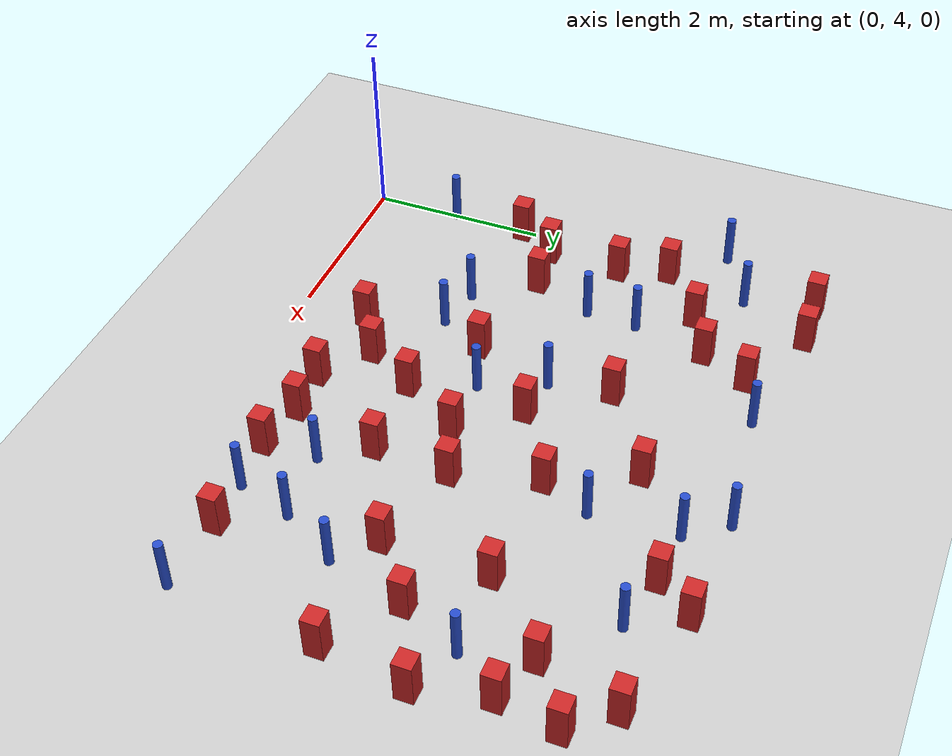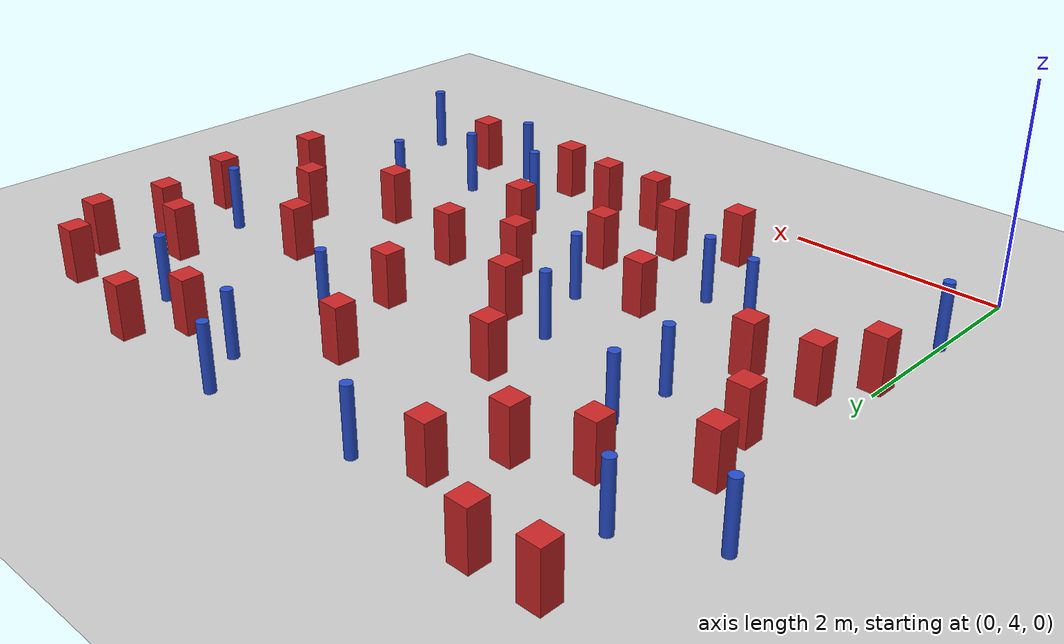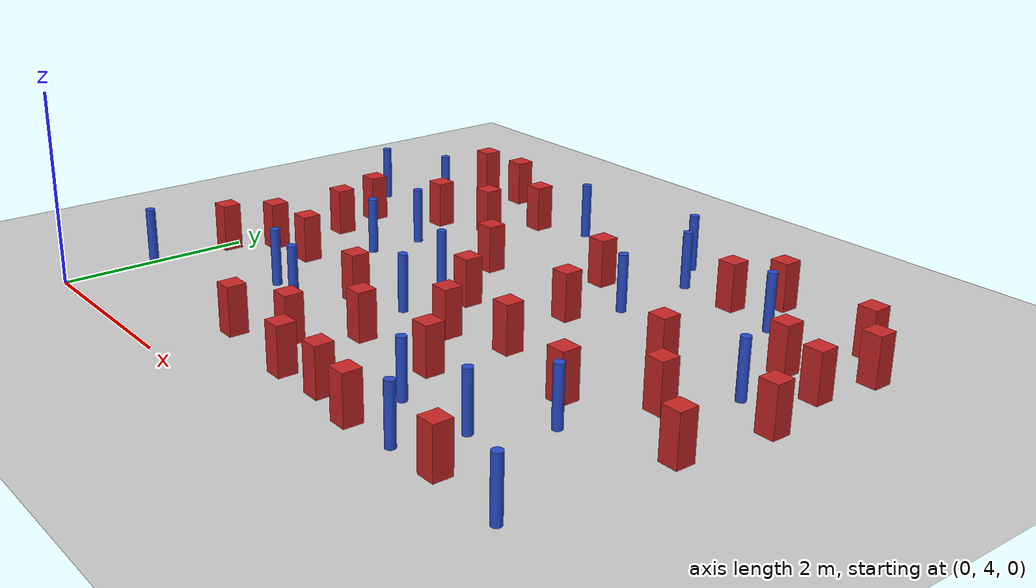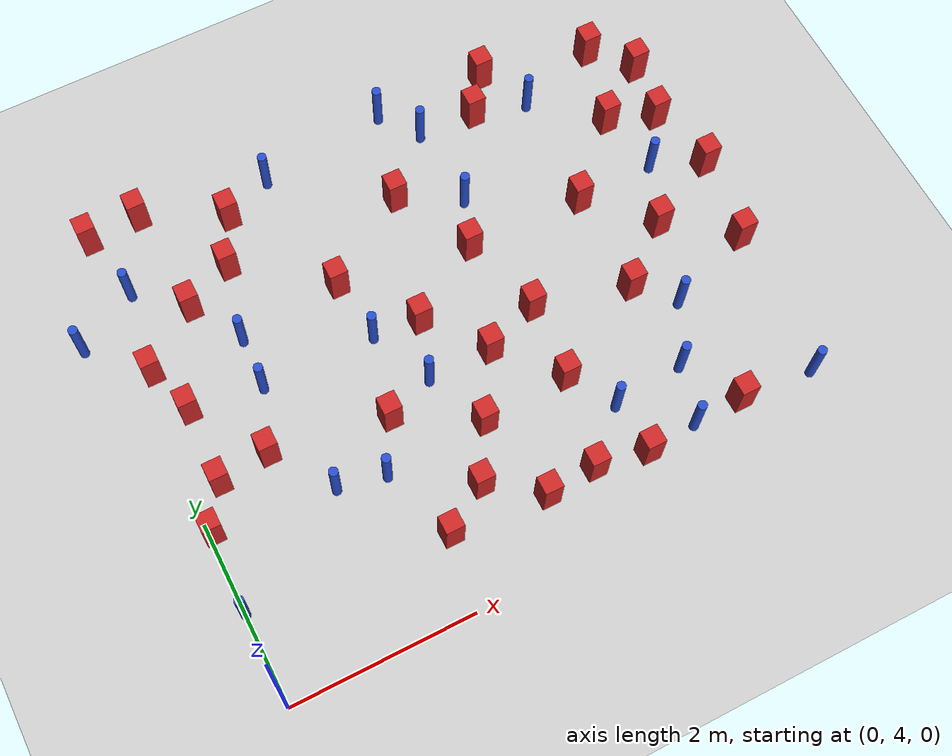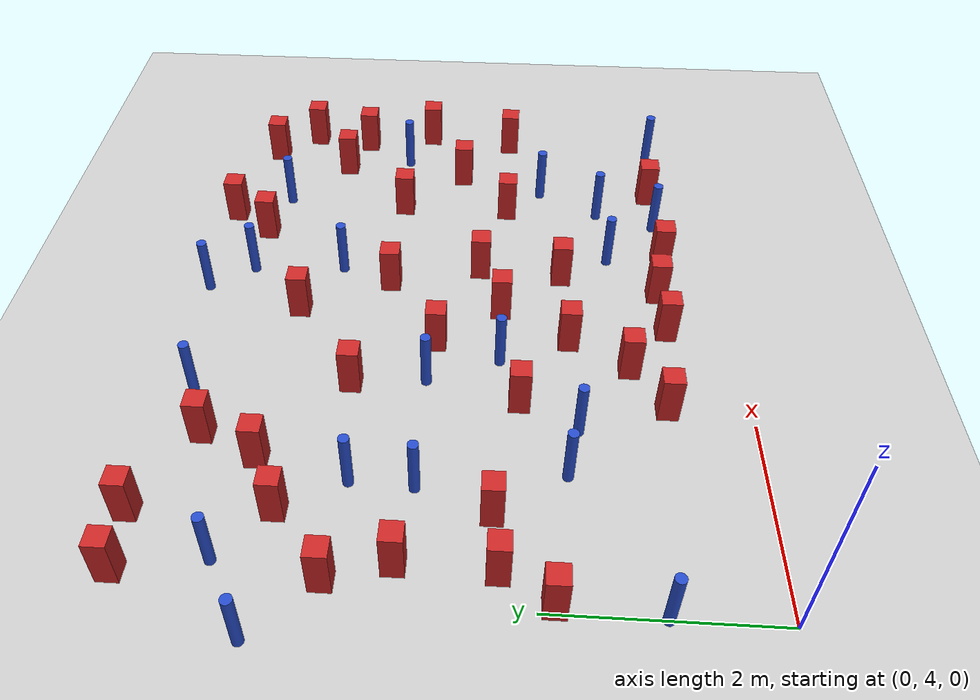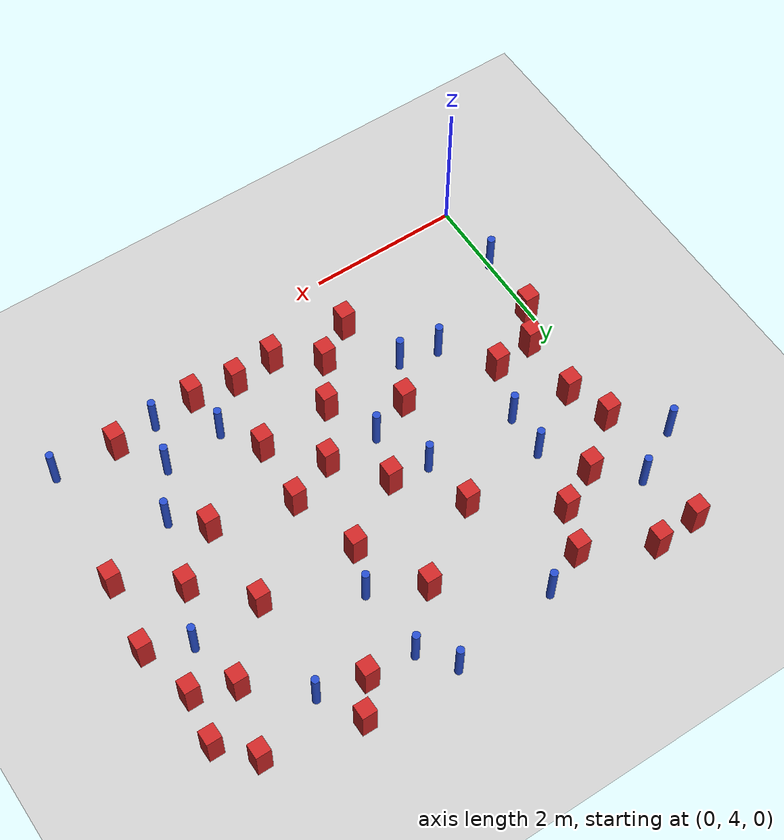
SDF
<sdf version="1.6">
 <world name="default">
  <model name="ground_plane">
   <static>1</static>
   <link name="link">
    <collision name="collision">
     <geometry><plane><normal>0 0 1</normal><size>100 100</size></plane></geometry>
     <surface><friction><ode><mu>100</mu><mu2>50</mu2></ode></friction></surface>
    </collision>
    <visual name="visual">
     <cast_shadows>0</cast_shadows>
     <geometry><plane><normal>0 0 1</normal><size>100 100</size></plane></geometry>
     <material>
      <ambient>1.0 1.0 1.0 1.0</ambient>
      <diffuse>0.8 0.8 0.8 1.0</diffuse>
      <specular>0.01 0.01 0.01 1.000000</specular>
     </material>
    </visual>
   </link>
  </model>
  <model name="square_post_obstacle2">
   <static>true</static>
   <pose>6.30857068601 8.03620668134 -6.11067671241e-07 -5.50515727128e-06 -8.79689657224e-07 2.37013304536e-05</pose>
   <link name="link">
    <pose>0 0 0.25 0 -0 0</pose>
    <inertial>
     <mass>100</mass>
     <inertia>
      <ixx>0.166667</ixx>
      <ixy>0</ixy>
      <ixz>0</ixz>
      <iyy>0.166667</iyy>
      <iyz>0</iyz>
      <izz>0.166667</izz>
     </inertia>
    </inertial>
    <collision name="collision"><geometry><box><size>.2 .2 .5</size></box></geometry></collision>
    <visual name="visual">
     <geometry><box><size>.2 .2 .5</size></box></geometry>
     <material>
      <script><name>Gazebo/Red</name><uri>file://media/materials/scripts/gazebo.material</uri></script>
     </material>
    </visual>
   </link>
  </model>
  <model name="square_post_obstacle3">
   <static>true</static>
   <pose>0.34875297249 7.15030938132 -6.11067671241e-07 -5.50515727128e-06 -8.79689657224e-07 2.37013304536e-05</pose>
   <link name="link">
    <pose>0 0 0.25 0 -0 0</pose>
    <inertial>
     <mass>100</mass>
     <inertia>
      <ixx>0.166667</ixx>
      <ixy>0</ixy>
      <ixz>0</ixz>
      <iyy>0.166667</iyy>
      <iyz>0</iyz>
      <izz>0.166667</izz>
     </inertia>
    </inertial>
    <collision name="collision"><geometry><box><size>.2 .2 .5</size></box></geometry></collision>
    <visual name="visual">
     <geometry><box><size>.2 .2 .5</size></box></geometry>
     <material>
      <script><name>Gazebo/Red</name><uri>file://media/materials/scripts/gazebo.material</uri></script>
     </material>
    </visual>
   </link>
  </model>
  <model name="square_post_obstacle7">
   <static>true</static>
   <pose>0.875443202514 6.37340452609 -6.11067671241e-07 -5.50515727128e-06 -8.79689657224e-07 2.37013304536e-05</pose>
   <link name="link">
    <pose>0 0 0.25 0 -0 0</pose>
    <inertial>
     <mass>100</mass>
     <inertia>
      <ixx>0.166667</ixx>
      <ixy>0</ixy>
      <ixz>0</ixz>
      <iyy>0.166667</iyy>
      <iyz>0</iyz>
      <izz>0.166667</izz>
     </inertia>
    </inertial>
    <collision name="collision"><geometry><box><size>.2 .2 .5</size></box></geometry></collision>
    <visual name="visual">
     <geometry><box><size>.2 .2 .5</size></box></geometry>
     <material>
      <script><name>Gazebo/Red</name><uri>file://media/materials/scripts/gazebo.material</uri></script>
     </material>
    </visual>
   </link>
  </model>
  <model name="square_post_obstacle20">
   <static>true</static>
   <pose>6.4873067014 7.27600624761 -6.11067671241e-07 -5.50515727128e-06 -8.79689657224e-07 2.37013304536e-05</pose>
   <link name="link">
    <pose>0 0 0.25 0 -0 0</pose>
    <inertial>
     <mass>100</mass>
     <inertia>
      <ixx>0.166667</ixx>
      <ixy>0</ixy>
      <ixz>0</ixz>
      <iyy>0.166667</iyy>
      <iyz>0</iyz>
      <izz>0.166667</izz>
     </inertia>
    </inertial>
    <collision name="collision"><geometry><box><size>.2 .2 .5</size></box></geometry></collision>
    <visual name="visual">
     <geometry><box><size>.2 .2 .5</size></box></geometry>
     <material>
      <script><name>Gazebo/Red</name><uri>file://media/materials/scripts/gazebo.material</uri></script>
     </material>
    </visual>
   </link>
  </model>
  <model name="pole_obstacle17">
   <static>true</static>
   <pose>5.39811109469 5.95545410937 -9.47619616065e-06 5.49618799737e-07 2.36310414037e-07 -1.55090534814e-07</pose>
   <link name="link">
    <pose>0 0 0.3 0 -0 0</pose>
    <inertial>
     <mass>1</mass>
     <inertia><ixx>0.145833</ixx><ixy>0</ixy><ixz>0</ixz><iyy>0.145833</iyy><iyz>0</iyz><izz>0.125</izz></inertia>
    </inertial>
    <collision name="collision">
     <geometry><cylinder><radius>0.05</radius><length>.6</length></cylinder></geometry>
    </collision>
    <visual name="visual">
     <geometry><cylinder><radius>0.05</radius><length>.6</length></cylinder></geometry>
     <material>
      <script><name>Gazebo/Blue</name><uri>file://media/materials/scripts/gazebo.material</uri></script>
     </material>
    </visual>
   </link>
  </model>
  <model name="square_post_obstacle24">
   <static>true</static>
   <pose>0.319986857414 6.30865224558 -6.11067671241e-07 -5.50515727128e-06 -8.79689657224e-07 2.37013304536e-05</pose>
   <link name="link">
    <pose>0 0 0.25 0 -0 0</pose>
    <inertial>
     <mass>100</mass>
     <inertia>
      <ixx>0.166667</ixx>
      <ixy>0</ixy>
      <ixz>0</ixz>
      <iyy>0.166667</iyy>
      <iyz>0</iyz>
      <izz>0.166667</izz>
     </inertia>
    </inertial>
    <collision name="collision"><geometry><box><size>.2 .2 .5</size></box></geometry></collision>
    <visual name="visual">
     <geometry><box><size>.2 .2 .5</size></box></geometry>
     <material>
      <script><name>Gazebo/Red</name><uri>file://media/materials/scripts/gazebo.material</uri></script>
     </material>
    </visual>
   </link>
  </model>
  <model name="pole_obstacle23">
   <static>true</static>
   <pose>4.23714180246 5.24395200556 -9.47619616065e-06 5.49618799737e-07 2.36310414037e-07 -1.55090534814e-07</pose>
   <link name="link">
    <pose>0 0 0.3 0 -0 0</pose>
    <inertial>
     <mass>1</mass>
     <inertia><ixx>0.145833</ixx><ixy>0</ixy><ixz>0</ixz><iyy>0.145833</iyy><iyz>0</iyz><izz>0.125</izz></inertia>
    </inertial>
    <collision name="collision">
     <geometry><cylinder><radius>0.05</radius><length>.6</length></cylinder></geometry>
    </collision>
    <visual name="visual">
     <geometry><cylinder><radius>0.05</radius><length>.6</length></cylinder></geometry>
     <material>
      <script><name>Gazebo/Blue</name><uri>file://media/materials/scripts/gazebo.material</uri></script>
     </material>
    </visual>
   </link>
  </model>
  <model name="pole_obstacle26">
   <static>true</static>
   <pose>3.95080094777 8.04865407813 -9.47619616065e-06 5.49618799737e-07 2.36310414058e-07 -1.55090534801e-07</pose>
   <link name="link">
    <pose>0 0 0.3 0 -0 0</pose>
    <inertial>
     <mass>1</mass>
     <inertia><ixx>0.145833</ixx><ixy>0</ixy><ixz>0</ixz><iyy>0.145833</iyy><iyz>0</iyz><izz>0.125</izz></inertia>
    </inertial>
    <collision name="collision">
     <geometry><cylinder><radius>0.05</radius><length>.6</length></cylinder></geometry>
    </collision>
    <visual name="visual">
     <geometry><cylinder><radius>0.05</radius><length>.6</length></cylinder></geometry>
     <material>
      <script><name>Gazebo/Blue</name><uri>file://media/materials/scripts/gazebo.material</uri></script>
     </material>
    </visual>
   </link>
  </model>
  <model name="pole_obstacle32">
   <static>true</static>
   <pose>5.12633518177 8.81758461815 -9.47619616065e-06 5.49618799737e-07 2.36310414065e-07 -1.55090534796e-07</pose>
   <link name="link">
    <pose>0 0 0.3 0 -0 0</pose>
    <inertial>
     <mass>1</mass>
     <inertia><ixx>0.145833</ixx><ixy>0</ixy><ixz>0</ixz><iyy>0.145833</iyy><iyz>0</iyz><izz>0.125</izz></inertia>
    </inertial>
    <collision name="collision">
     <geometry><cylinder><radius>0.05</radius><length>.6</length></cylinder></geometry>
    </collision>
    <visual name="visual">
     <geometry><cylinder><radius>0.05</radius><length>.6</length></cylinder></geometry>
     <material>
      <script><name>Gazebo/Blue</name><uri>file://media/materials/scripts/gazebo.material</uri></script>
     </material>
    </visual>
   </link>
  </model>
  <model name="square_post_obstacle35">
   <static>true</static>
   <pose>2.88280339327 6.98639643378 -6.11067671241e-07 -5.50515727128e-06 -8.79689657224e-07 2.37013304536e-05</pose>
   <link name="link">
    <pose>0 0 0.25 0 -0 0</pose>
    <inertial>
     <mass>100</mass>
     <inertia>
      <ixx>0.166667</ixx>
      <ixy>0</ixy>
      <ixz>0</ixz>
      <iyy>0.166667</iyy>
      <iyz>0</iyz>
      <izz>0.166667</izz>
     </inertia>
    </inertial>
    <collision name="collision"><geometry><box><size>.2 .2 .5</size></box></geometry></collision>
    <visual name="visual">
     <geometry><box><size>.2 .2 .5</size></box></geometry>
     <material>
      <script><name>Gazebo/Red</name><uri>file://media/materials/scripts/gazebo.material</uri></script>
     </material>
    </visual>
   </link>
  </model>
  <model name="pole_obstacle34">
   <static>true</static>
   <pose>0.00630926009801 4.98696768657 -9.47619616065e-06 5.49618799737e-07 2.36310414062e-07 -1.550905348e-07</pose>
   <link name="link">
    <pose>0 0 0.3 0 -0 0</pose>
    <inertial>
     <mass>1</mass>
     <inertia><ixx>0.145833</ixx><ixy>0</ixy><ixz>0</ixz><iyy>0.145833</iyy><iyz>0</iyz><izz>0.125</izz></inertia>
    </inertial>
    <collision name="collision">
     <geometry><cylinder><radius>0.05</radius><length>.6</length></cylinder></geometry>
    </collision>
    <visual name="visual">
     <geometry><cylinder><radius>0.05</radius><length>.6</length></cylinder></geometry>
     <material>
      <script><name>Gazebo/Blue</name><uri>file://media/materials/scripts/gazebo.material</uri></script>
     </material>
    </visual>
   </link>
  </model>
  <model name="square_post_obstacle39">
   <static>true</static>
   <pose>4.27816305701 4.66760149722 -6.11067671241e-07 -5.50515727128e-06 -8.79689657224e-07 2.37013304536e-05</pose>
   <link name="link">
    <pose>0 0 0.25 0 -0 0</pose>
    <inertial>
     <mass>100</mass>
     <inertia>
      <ixx>0.166667</ixx>
      <ixy>0</ixy>
      <ixz>0</ixz>
      <iyy>0.166667</iyy>
      <iyz>0</iyz>
      <izz>0.166667</izz>
     </inertia>
    </inertial>
    <collision name="collision"><geometry><box><size>.2 .2 .5</size></box></geometry></collision>
    <visual name="visual">
     <geometry><box><size>.2 .2 .5</size></box></geometry>
     <material>
      <script><name>Gazebo/Red</name><uri>file://media/materials/scripts/gazebo.material</uri></script>
     </material>
    </visual>
   </link>
  </model>
  <model name="square_post_obstacle44">
   <static>true</static>
   <pose>0.813330865443 8.20201625976 -6.11067671241e-07 -5.50515727128e-06 -8.79689657224e-07 2.37013304536e-05</pose>
   <link name="link">
    <pose>0 0 0.25 0 -0 0</pose>
    <inertial>
     <mass>100</mass>
     <inertia>
      <ixx>0.166667</ixx>
      <ixy>0</ixy>
      <ixz>0</ixz>
      <iyy>0.166667</iyy>
      <iyz>0</iyz>
      <izz>0.166667</izz>
     </inertia>
    </inertial>
    <collision name="collision"><geometry><box><size>.2 .2 .5</size></box></geometry></collision>
    <visual name="visual">
     <geometry><box><size>.2 .2 .5</size></box></geometry>
     <material>
      <script><name>Gazebo/Red</name><uri>file://media/materials/scripts/gazebo.material</uri></script>
     </material>
    </visual>
   </link>
  </model>
  <model name="pole_obstacle49">
   <static>true</static>
   <pose>-0.363981836544 8.25822357127 -9.47619616065e-06 5.49618799737e-07 2.36310414031e-07 -1.55090534818e-07</pose>
   <link name="link">
    <pose>0 0 0.3 0 -0 0</pose>
    <inertial>
     <mass>1</mass>
     <inertia><ixx>0.145833</ixx><ixy>0</ixy><ixz>0</ixz><iyy>0.145833</iyy><iyz>0</iyz><izz>0.125</izz></inertia>
    </inertial>
    <collision name="collision">
     <geometry><cylinder><radius>0.05</radius><length>.6</length></cylinder></geometry>
    </collision>
    <visual name="visual">
     <geometry><cylinder><radius>0.05</radius><length>.6</length></cylinder></geometry>
     <material>
      <script><name>Gazebo/Blue</name><uri>file://media/materials/scripts/gazebo.material</uri></script>
     </material>
    </visual>
   </link>
  </model>
  <model name="square_post_obstacle49">
   <static>true</static>
   <pose>5.39788577088 4.73747410877 -6.11067671241e-07 -5.50515727128e-06 -8.79689657224e-07 2.37013304536e-05</pose>
   <link name="link">
    <pose>0 0 0.25 0 -0 0</pose>
    <inertial>
     <mass>100</mass>
     <inertia>
      <ixx>0.166667</ixx>
      <ixy>0</ixy>
      <ixz>0</ixz>
      <iyy>0.166667</iyy>
      <iyz>0</iyz>
      <izz>0.166667</izz>
     </inertia>
    </inertial>
    <collision name="collision"><geometry><box><size>.2 .2 .5</size></box></geometry></collision>
    <visual name="visual">
     <geometry><box><size>.2 .2 .5</size></box></geometry>
     <material>
      <script><name>Gazebo/Red</name><uri>file://media/materials/scripts/gazebo.material</uri></script>
     </material>
    </visual>
   </link>
  </model>
  <model name="square_post_obstacle57">
   <static>true</static>
   <pose>1.60326105103 9.00372230314 -6.11067671241e-07 -5.50515727128e-06 -8.79689657224e-07 2.37013304536e-05</pose>
   <link name="link">
    <pose>0 0 0.25 0 -0 0</pose>
    <inertial>
     <mass>100</mass>
     <inertia>
      <ixx>0.166667</ixx>
      <ixy>0</ixy>
      <ixz>0</ixz>
      <iyy>0.166667</iyy>
      <iyz>0</iyz>
      <izz>0.166667</izz>
     </inertia>
    </inertial>
    <collision name="collision"><geometry><box><size>.2 .2 .5</size></box></geometry></collision>
    <visual name="visual">
     <geometry><box><size>.2 .2 .5</size></box></geometry>
     <material>
      <script><name>Gazebo/Red</name><uri>file://media/materials/scripts/gazebo.material</uri></script>
     </material>
    </visual>
   </link>
  </model>
  <model name="square_post_obstacle59">
   <static>true</static>
   <pose>5.02869484603 6.33457852251 -6.11067671241e-07 -5.50515727128e-06 -8.79689657224e-07 2.37013304536e-05</pose>
   <link name="link">
    <pose>0 0 0.25 0 -0 0</pose>
    <inertial>
     <mass>100</mass>
     <inertia>
      <ixx>0.166667</ixx>
      <ixy>0</ixy>
      <ixz>0</ixz>
      <iyy>0.166667</iyy>
      <iyz>0</iyz>
      <izz>0.166667</izz>
     </inertia>
    </inertial>
    <collision name="collision"><geometry><box><size>.2 .2 .5</size></box></geometry></collision>
    <visual name="visual">
     <geometry><box><size>.2 .2 .5</size></box></geometry>
     <material>
      <script><name>Gazebo/Red</name><uri>file://media/materials/scripts/gazebo.material</uri></script>
     </material>
    </visual>
   </link>
  </model>
  <model name="square_post_obstacle71">
   <static>true</static>
   <pose>5.04855044282 7.48935441724 -6.11067671241e-07 -5.50515727128e-06 -8.79689657224e-07 2.37013304536e-05</pose>
   <link name="link">
    <pose>0 0 0.25 0 -0 0</pose>
    <inertial>
     <mass>100</mass>
     <inertia>
      <ixx>0.166667</ixx>
      <ixy>0</ixy>
      <ixz>0</ixz>
      <iyy>0.166667</iyy>
      <iyz>0</iyz>
      <izz>0.166667</izz>
     </inertia>
    </inertial>
    <collision name="collision"><geometry><box><size>.2 .2 .5</size></box></geometry></collision>
    <visual name="visual">
     <geometry><box><size>.2 .2 .5</size></box></geometry>
     <material>
      <script><name>Gazebo/Red</name><uri>file://media/materials/scripts/gazebo.material</uri></script>
     </material>
    </visual>
   </link>
  </model>
  <model name="square_post_obstacle72">
   <static>true</static>
   <pose>3.37890925562 6.36142070768 -6.11067671241e-07 -5.50515727128e-06 -8.79689657224e-07 2.37013304536e-05</pose>
   <link name="link">
    <pose>0 0 0.25 0 -0 0</pose>
    <inertial>
     <mass>100</mass>
     <inertia>
      <ixx>0.166667</ixx>
      <ixy>0</ixy>
      <ixz>0</ixz>
      <iyy>0.166667</iyy>
      <iyz>0</iyz>
      <izz>0.166667</izz>
     </inertia>
    </inertial>
    <collision name="collision"><geometry><box><size>.2 .2 .5</size></box></geometry></collision>
    <visual name="visual">
     <geometry><box><size>.2 .2 .5</size></box></geometry>
     <material>
      <script><name>Gazebo/Red</name><uri>file://media/materials/scripts/gazebo.material</uri></script>
     </material>
    </visual>
   </link>
  </model>
  <model name="square_post_obstacle73">
   <static>true</static>
   <pose>0.164285147147 9.40424965769 -6.11067671241e-07 -5.50515727128e-06 -8.79689657224e-07 2.37013304536e-05</pose>
   <link name="link">
    <pose>0 0 0.25 0 -0 0</pose>
    <inertial>
     <mass>100</mass>
     <inertia>
      <ixx>0.166667</ixx>
      <ixy>0</ixy>
      <ixz>0</ixz>
      <iyy>0.166667</iyy>
      <iyz>0</iyz>
      <izz>0.166667</izz>
     </inertia>
    </inertial>
    <collision name="collision"><geometry><box><size>.2 .2 .5</size></box></geometry></collision>
    <visual name="visual">
     <geometry><box><size>.2 .2 .5</size></box></geometry>
     <material>
      <script><name>Gazebo/Red</name><uri>file://media/materials/scripts/gazebo.material</uri></script>
     </material>
    </visual>
   </link>
  </model>
  <model name="pole_obstacle82">
   <static>true</static>
   <pose>6.21397190057 4.66972822807 -9.47619616065e-06 5.49618799737e-07 2.36310414037e-07 -1.55090534814e-07</pose>
   <link name="link">
    <pose>0 0 0.3 0 -0 0</pose>
    <inertial>
     <mass>1</mass>
     <inertia><ixx>0.145833</ixx><ixy>0</ixy><ixz>0</ixz><iyy>0.145833</iyy><iyz>0</iyz><izz>0.125</izz></inertia>
    </inertial>
    <collision name="collision">
     <geometry><cylinder><radius>0.05</radius><length>.6</length></cylinder></geometry>
    </collision>
    <visual name="visual">
     <geometry><cylinder><radius>0.05</radius><length>.6</length></cylinder></geometry>
     <material>
      <script><name>Gazebo/Blue</name><uri>file://media/materials/scripts/gazebo.material</uri></script>
     </material>
    </visual>
   </link>
  </model>
  <model name="pole_obstacle87">
   <static>true</static>
   <pose>2.14553210498 9.22748322635 -9.4761961606e-06 5.49618799729e-07 2.36310414e-07 -1.55090534824e-07</pose>
   <link name="link">
    <pose>0 0 0.3 0 -0 0</pose>
    <inertial>
     <mass>1</mass>
     <inertia><ixx>0.145833</ixx><ixy>0</ixy><ixz>0</ixz><iyy>0.145833</iyy><iyz>0</iyz><izz>0.125</izz></inertia>
    </inertial>
    <collision name="collision">
     <geometry><cylinder><radius>0.05</radius><length>.6</length></cylinder></geometry>
    </collision>
    <visual name="visual">
     <geometry><cylinder><radius>0.05</radius><length>.6</length></cylinder></geometry>
     <material>
      <script><name>Gazebo/Blue</name><uri>file://media/materials/scripts/gazebo.material</uri></script>
     </material>
    </visual>
   </link>
  </model>
  <model name="pole_obstacle96">
   <static>true</static>
   <pose>1.12494105669 7.04836677817 -9.47619616065e-06 5.49618799737e-07 2.36310414061e-07 -1.550905348e-07</pose>
   <link name="link">
    <pose>0 0 0.3 0 -0 0</pose>
    <inertial>
     <mass>1</mass>
     <inertia><ixx>0.145833</ixx><ixy>0</ixy><ixz>0</ixz><iyy>0.145833</iyy><iyz>0</iyz><izz>0.125</izz></inertia>
    </inertial>
    <collision name="collision">
     <geometry><cylinder><radius>0.05</radius><length>.6</length></cylinder></geometry>
    </collision>
    <visual name="visual">
     <geometry><cylinder><radius>0.05</radius><length>.6</length></cylinder></geometry>
     <material>
      <script><name>Gazebo/Blue</name><uri>file://media/materials/scripts/gazebo.material</uri></script>
     </material>
    </visual>
   </link>
  </model>
  <model name="pole_obstacle98">
   <static>true</static>
   <pose>1.32580733357 5.72697444879 -9.47619616065e-06 5.49618799737e-07 2.36310414061e-07 -1.550905348e-07</pose>
   <link name="link">
    <pose>0 0 0.3 0 -0 0</pose>
    <inertial>
     <mass>1</mass>
     <inertia><ixx>0.145833</ixx><ixy>0</ixy><ixz>0</ixz><iyy>0.145833</iyy><iyz>0</iyz><izz>0.125</izz></inertia>
    </inertial>
    <collision name="collision">
     <geometry><cylinder><radius>0.05</radius><length>.6</length></cylinder></geometry>
    </collision>
    <visual name="visual">
     <geometry><cylinder><radius>0.05</radius><length>.6</length></cylinder></geometry>
     <material>
      <script><name>Gazebo/Blue</name><uri>file://media/materials/scripts/gazebo.material</uri></script>
     </material>
    </visual>
   </link>
  </model>
  <model name="pole_obstacle108">
   <static>true</static>
   <pose>4.84528396312 4.70628656049 -9.47619616065e-06 5.49618799737e-07 2.36310414037e-07 -1.55090534814e-07</pose>
   <link name="link">
    <pose>0 0 0.3 0 -0 0</pose>
    <inertial>
     <mass>1</mass>
     <inertia><ixx>0.145833</ixx><ixy>0</ixy><ixz>0</ixz><iyy>0.145833</iyy><iyz>0</iyz><izz>0.125</izz></inertia>
    </inertial>
    <collision name="collision">
     <geometry><cylinder><radius>0.05</radius><length>.6</length></cylinder></geometry>
    </collision>
    <visual name="visual">
     <geometry><cylinder><radius>0.05</radius><length>.6</length></cylinder></geometry>
     <material>
      <script><name>Gazebo/Blue</name><uri>file://media/materials/scripts/gazebo.material</uri></script>
     </material>
    </visual>
   </link>
  </model>
  <model name="pole_obstacle115">
   <static>true</static>
   <pose>1.83803132143 5.62075404931 -9.47619616065e-06 5.49618799737e-07 2.36310414061e-07 -1.550905348e-07</pose>
   <link name="link">
    <pose>0 0 0.3 0 -0 0</pose>
    <inertial>
     <mass>1</mass>
     <inertia><ixx>0.145833</ixx><ixy>0</ixy><ixz>0</ixz><iyy>0.145833</iyy><iyz>0</iyz><izz>0.125</izz></inertia>
    </inertial>
    <collision name="collision">
     <geometry><cylinder><radius>0.05</radius><length>.6</length></cylinder></geometry>
    </collision>
    <visual name="visual">
     <geometry><cylinder><radius>0.05</radius><length>.6</length></cylinder></geometry>
     <material>
      <script><name>Gazebo/Blue</name><uri>file://media/materials/scripts/gazebo.material</uri></script>
     </material>
    </visual>
   </link>
  </model>
  <model name="square_post_obstacle107">
   <static>true</static>
   <pose>3.29516186188 8.40141141337 -6.11067671241e-07 -5.50515727128e-06 -8.79689657224e-07 2.37013304536e-05</pose>
   <link name="link">
    <pose>0 0 0.25 0 -0 0</pose>
    <inertial>
     <mass>100</mass>
     <inertia>
      <ixx>0.166667</ixx>
      <ixy>0</ixy>
      <ixz>0</ixz>
      <iyy>0.166667</iyy>
      <iyz>0</iyz>
      <izz>0.166667</izz>
     </inertia>
    </inertial>
    <collision name="collision"><geometry><box><size>.2 .2 .5</size></box></geometry></collision>
    <visual name="visual">
     <geometry><box><size>.2 .2 .5</size></box></geometry>
     <material>
      <script><name>Gazebo/Red</name><uri>file://media/materials/scripts/gazebo.material</uri></script>
     </material>
    </visual>
   </link>
  </model>
  <model name="square_post_obstacle112">
   <static>true</static>
   <pose>2.96192233966 5.68674087734 -6.11067671241e-07 -5.50515727128e-06 -8.79689657224e-07 2.37013304536e-05</pose>
   <link name="link">
    <pose>0 0 0.25 0 -0 0</pose>
    <inertial>
     <mass>100</mass>
     <inertia>
      <ixx>0.166667</ixx>
      <ixy>0</ixy>
      <ixz>0</ixz>
      <iyy>0.166667</iyy>
      <iyz>0</iyz>
      <izz>0.166667</izz>
     </inertia>
    </inertial>
    <collision name="collision"><geometry><box><size>.2 .2 .5</size></box></geometry></collision>
    <visual name="visual">
     <geometry><box><size>.2 .2 .5</size></box></geometry>
     <material>
      <script><name>Gazebo/Red</name><uri>file://media/materials/scripts/gazebo.material</uri></script>
     </material>
    </visual>
   </link>
  </model>
  <model name="pole_obstacle127">
   <static>true</static>
   <pose>5.0333257912 5.32319945197 -9.47619616065e-06 5.49618799737e-07 2.36310414037e-07 -1.55090534814e-07</pose>
   <link name="link">
    <pose>0 0 0.3 0 -0 0</pose>
    <inertial>
     <mass>1</mass>
     <inertia><ixx>0.145833</ixx><ixy>0</ixy><ixz>0</ixz><iyy>0.145833</iyy><iyz>0</iyz><izz>0.125</izz></inertia>
    </inertial>
    <collision name="collision">
     <geometry><cylinder><radius>0.05</radius><length>.6</length></cylinder></geometry>
    </collision>
    <visual name="visual">
     <geometry><cylinder><radius>0.05</radius><length>.6</length></cylinder></geometry>
     <material>
      <script><name>Gazebo/Blue</name><uri>file://media/materials/scripts/gazebo.material</uri></script>
     </material>
    </visual>
   </link>
  </model>
  <model name="square_post_obstacle113">
   <static>true</static>
   <pose>2.13304536562 6.16113157387 -6.11067671241e-07 -5.50515727128e-06 -8.79689657224e-07 2.37013304536e-05</pose>
   <link name="link">
    <pose>0 0 0.25 0 -0 0</pose>
    <inertial>
     <mass>100</mass>
     <inertia>
      <ixx>0.166667</ixx>
      <ixy>0</ixy>
      <ixz>0</ixz>
      <iyy>0.166667</iyy>
      <iyz>0</iyz>
      <izz>0.166667</izz>
     </inertia>
    </inertial>
    <collision name="collision"><geometry><box><size>.2 .2 .5</size></box></geometry></collision>
    <visual name="visual">
     <geometry><box><size>.2 .2 .5</size></box></geometry>
     <material>
      <script><name>Gazebo/Red</name><uri>file://media/materials/scripts/gazebo.material</uri></script>
     </material>
    </visual>
   </link>
  </model>
  <model name="pole_obstacle129">
   <static>true</static>
   <pose>5.94918437114 7.51717559985 -9.47619616065e-06 5.49618799737e-07 2.36310414037e-07 -1.55090534814e-07</pose>
   <link name="link">
    <pose>0 0 0.3 0 -0 0</pose>
    <inertial>
     <mass>1</mass>
     <inertia><ixx>0.145833</ixx><ixy>0</ixy><ixz>0</ixz><iyy>0.145833</iyy><iyz>0</iyz><izz>0.125</izz></inertia>
    </inertial>
    <collision name="collision">
     <geometry><cylinder><radius>0.05</radius><length>.6</length></cylinder></geometry>
    </collision>
    <visual name="visual">
     <geometry><cylinder><radius>0.05</radius><length>.6</length></cylinder></geometry>
     <material>
      <script><name>Gazebo/Blue</name><uri>file://media/materials/scripts/gazebo.material</uri></script>
     </material>
    </visual>
   </link>
  </model>
  <model name="pole_obstacle131">
   <static>true</static>
   <pose>3.58278617411 9.41709797562 -9.4761961606e-06 5.49618799729e-07 2.36310414e-07 -1.55090534824e-07</pose>
   <link name="link">
    <pose>0 0 0.3 0 -0 0</pose>
    <inertial>
     <mass>1</mass>
     <inertia><ixx>0.145833</ixx><ixy>0</ixy><ixz>0</ixz><iyy>0.145833</iyy><iyz>0</iyz><izz>0.125</izz></inertia>
    </inertial>
    <collision name="collision">
     <geometry><cylinder><radius>0.05</radius><length>.6</length></cylinder></geometry>
    </collision>
    <visual name="visual">
     <geometry><cylinder><radius>0.05</radius><length>.6</length></cylinder></geometry>
     <material>
      <script><name>Gazebo/Blue</name><uri>file://media/materials/scripts/gazebo.material</uri></script>
     </material>
    </visual>
   </link>
  </model>
  <model name="square_post_obstacle115">
   <static>true</static>
   <pose>3.99070977397 6.59171670623 -6.11067671241e-07 -5.50515727128e-06 -8.79689657224e-07 2.37013304536e-05</pose>
   <link name="link">
    <pose>0 0 0.25 0 -0 0</pose>
    <inertial>
     <mass>100</mass>
     <inertia>
      <ixx>0.166667</ixx>
      <ixy>0</ixy>
      <ixz>0</ixz>
      <iyy>0.166667</iyy>
      <iyz>0</iyz>
      <izz>0.166667</izz>
     </inertia>
    </inertial>
    <collision name="collision"><geometry><box><size>.2 .2 .5</size></box></geometry></collision>
    <visual name="visual">
     <geometry><box><size>.2 .2 .5</size></box></geometry>
     <material>
      <script><name>Gazebo/Red</name><uri>file://media/materials/scripts/gazebo.material</uri></script>
     </material>
    </visual>
   </link>
  </model>
  <model name="square_post_obstacle118">
   <static>true</static>
   <pose>2.2953272275 7.7510630628 -6.11067671241e-07 -5.50515727128e-06 -8.79689657224e-07 2.37013304536e-05</pose>
   <link name="link">
    <pose>0 0 0.25 0 -0 0</pose>
    <inertial>
     <mass>100</mass>
     <inertia>
      <ixx>0.166667</ixx>
      <ixy>0</ixy>
      <ixz>0</ixz>
      <iyy>0.166667</iyy>
      <iyz>0</iyz>
      <izz>0.166667</izz>
     </inertia>
    </inertial>
    <collision name="collision"><geometry><box><size>.2 .2 .5</size></box></geometry></collision>
    <visual name="visual">
     <geometry><box><size>.2 .2 .5</size></box></geometry>
     <material>
      <script><name>Gazebo/Red</name><uri>file://media/materials/scripts/gazebo.material</uri></script>
     </material>
    </visual>
   </link>
  </model>
  <model name="square_post_obstacle121">
   <static>true</static>
   <pose>3.15929183938 4.71753629606 -6.11067671241e-07 -5.50515727128e-06 -8.79689657224e-07 2.37013304536e-05</pose>
   <link name="link">
    <pose>0 0 0.25 0 -0 0</pose>
    <inertial>
     <mass>100</mass>
     <inertia>
      <ixx>0.166667</ixx>
      <ixy>0</ixy>
      <ixz>0</ixz>
      <iyy>0.166667</iyy>
      <iyz>0</iyz>
      <izz>0.166667</izz>
     </inertia>
    </inertial>
    <collision name="collision"><geometry><box><size>.2 .2 .5</size></box></geometry></collision>
    <visual name="visual">
     <geometry><box><size>.2 .2 .5</size></box></geometry>
     <material>
      <script><name>Gazebo/Red</name><uri>file://media/materials/scripts/gazebo.material</uri></script>
     </material>
    </visual>
   </link>
  </model>
  <model name="square_post_obstacle126">
   <static>true</static>
   <pose>2.62313821598 5.11431201152 -6.11067671241e-07 -5.50515727128e-06 -8.79689657224e-07 2.37013304536e-05</pose>
   <link name="link">
    <pose>0 0 0.25 0 -0 0</pose>
    <inertial>
     <mass>100</mass>
     <inertia>
      <ixx>0.166667</ixx>
      <ixy>0</ixy>
      <ixz>0</ixz>
      <iyy>0.166667</iyy>
      <iyz>0</iyz>
      <izz>0.166667</izz>
     </inertia>
    </inertial>
    <collision name="collision"><geometry><box><size>.2 .2 .5</size></box></geometry></collision>
    <visual name="visual">
     <geometry><box><size>.2 .2 .5</size></box></geometry>
     <material>
      <script><name>Gazebo/Red</name><uri>file://media/materials/scripts/gazebo.material</uri></script>
     </material>
    </visual>
   </link>
  </model>
  <model name="pole_obstacle148">
   <static>true</static>
   <pose>2.67356898696 6.35487020407 -9.47619616065e-06 5.49618799738e-07 2.3631041406e-07 -1.55090534801e-07</pose>
   <link name="link">
    <pose>0 0 0.3 0 -0 0</pose>
    <inertial>
     <mass>1</mass>
     <inertia><ixx>0.145833</ixx><ixy>0</ixy><ixz>0</ixz><iyy>0.145833</iyy><iyz>0</iyz><izz>0.125</izz></inertia>
    </inertial>
    <collision name="collision">
     <geometry><cylinder><radius>0.05</radius><length>.6</length></cylinder></geometry>
    </collision>
    <visual name="visual">
     <geometry><cylinder><radius>0.05</radius><length>.6</length></cylinder></geometry>
     <material>
      <script><name>Gazebo/Blue</name><uri>file://media/materials/scripts/gazebo.material</uri></script>
     </material>
    </visual>
   </link>
  </model>
  <model name="pole_obstacle154">
   <static>true</static>
   <pose>3.89471589352 8.99462906576 -9.4761961606e-06 5.49618799729e-07 2.36310414e-07 -1.55090534824e-07</pose>
   <link name="link">
    <pose>0 0 0.3 0 -0 0</pose>
    <inertial>
     <mass>1</mass>
     <inertia><ixx>0.145833</ixx><ixy>0</ixy><ixz>0</ixz><iyy>0.145833</iyy><iyz>0</iyz><izz>0.125</izz></inertia>
    </inertial>
    <collision name="collision">
     <geometry><cylinder><radius>0.05</radius><length>.6</length></cylinder></geometry>
    </collision>
    <visual name="visual">
     <geometry><cylinder><radius>0.05</radius><length>.6</length></cylinder></geometry>
     <material>
      <script><name>Gazebo/Blue</name><uri>file://media/materials/scripts/gazebo.material</uri></script>
     </material>
    </visual>
   </link>
  </model>
  <model name="square_post_obstacle146">
   <static>true</static>
   <pose>0.176819150221 7.70790422277 -6.11067671241e-07 -5.50515727128e-06 -8.79689657224e-07 2.37013304536e-05</pose>
   <link name="link">
    <pose>0 0 0.25 0 -0 0</pose>
    <inertial>
     <mass>100</mass>
     <inertia>
      <ixx>0.166667</ixx>
      <ixy>0</ixy>
      <ixz>0</ixz>
      <iyy>0.166667</iyy>
      <iyz>0</iyz>
      <izz>0.166667</izz>
     </inertia>
    </inertial>
    <collision name="collision"><geometry><box><size>.2 .2 .5</size></box></geometry></collision>
    <visual name="visual">
     <geometry><box><size>.2 .2 .5</size></box></geometry>
     <material>
      <script><name>Gazebo/Red</name><uri>file://media/materials/scripts/gazebo.material</uri></script>
     </material>
    </visual>
   </link>
  </model>
  <model name="square_post_obstacle150">
   <static>true</static>
   <pose>3.92577488825 5.74671861181 -6.11067671241e-07 -5.50515727128e-06 -8.79689657224e-07 2.37013304536e-05</pose>
   <link name="link">
    <pose>0 0 0.25 0 -0 0</pose>
    <inertial>
     <mass>100</mass>
     <inertia>
      <ixx>0.166667</ixx>
      <ixy>0</ixy>
      <ixz>0</ixz>
      <iyy>0.166667</iyy>
      <iyz>0</iyz>
      <izz>0.166667</izz>
     </inertia>
    </inertial>
    <collision name="collision"><geometry><box><size>.2 .2 .5</size></box></geometry></collision>
    <visual name="visual">
     <geometry><box><size>.2 .2 .5</size></box></geometry>
     <material>
      <script><name>Gazebo/Red</name><uri>file://media/materials/scripts/gazebo.material</uri></script>
     </material>
    </visual>
   </link>
  </model>
  <model name="square_post_obstacle151">
   <static>true</static>
   <pose>6.35556607865 6.32725217118 -6.11067671241e-07 -5.50515727128e-06 -8.79689657224e-07 2.37013304536e-05</pose>
   <link name="link">
    <pose>0 0 0.25 0 -0 0</pose>
    <inertial>
     <mass>100</mass>
     <inertia>
      <ixx>0.166667</ixx>
      <ixy>0</ixy>
      <ixz>0</ixz>
      <iyy>0.166667</iyy>
      <iyz>0</iyz>
      <izz>0.166667</izz>
     </inertia>
    </inertial>
    <collision name="collision"><geometry><box><size>.2 .2 .5</size></box></geometry></collision>
    <visual name="visual">
     <geometry><box><size>.2 .2 .5</size></box></geometry>
     <material>
      <script><name>Gazebo/Red</name><uri>file://media/materials/scripts/gazebo.material</uri></script>
     </material>
    </visual>
   </link>
  </model>
  <model name="pole_obstacle163">
   <static>true</static>
   <pose>1.15327476459 7.62623562433 -9.47619616065e-06 5.49618799737e-07 2.36310414061e-07 -1.550905348e-07</pose>
   <link name="link">
    <pose>0 0 0.3 0 -0 0</pose>
    <inertial>
     <mass>1</mass>
     <inertia><ixx>0.145833</ixx><ixy>0</ixy><ixz>0</ixz><iyy>0.145833</iyy><iyz>0</iyz><izz>0.125</izz></inertia>
    </inertial>
    <collision name="collision">
     <geometry><cylinder><radius>0.05</radius><length>.6</length></cylinder></geometry>
    </collision>
    <visual name="visual">
     <geometry><cylinder><radius>0.05</radius><length>.6</length></cylinder></geometry>
     <material>
      <script><name>Gazebo/Blue</name><uri>file://media/materials/scripts/gazebo.material</uri></script>
     </material>
    </visual>
   </link>
  </model>
  <model name="square_post_obstacle156">
   <static>true</static>
   <pose>5.65693640467 6.85363700941 -6.11067671241e-07 -5.50515727128e-06 -8.79689657224e-07 2.37013304536e-05</pose>
   <link name="link">
    <pose>0 0 0.25 0 -0 0</pose>
    <inertial>
     <mass>100</mass>
     <inertia>
      <ixx>0.166667</ixx>
      <ixy>0</ixy>
      <ixz>0</ixz>
      <iyy>0.166667</iyy>
      <iyz>0</iyz>
      <izz>0.166667</izz>
     </inertia>
    </inertial>
    <collision name="collision"><geometry><box><size>.2 .2 .5</size></box></geometry></collision>
    <visual name="visual">
     <geometry><box><size>.2 .2 .5</size></box></geometry>
     <material>
      <script><name>Gazebo/Red</name><uri>file://media/materials/scripts/gazebo.material</uri></script>
     </material>
    </visual>
   </link>
  </model>
  <model name="pole_obstacle166">
   <static>true</static>
   <pose>2.37255310202 7.0451724287 -9.47619616065e-06 5.49618799738e-07 2.3631041406e-07 -1.55090534801e-07</pose>
   <link name="link">
    <pose>0 0 0.3 0 -0 0</pose>
    <inertial>
     <mass>1</mass>
     <inertia><ixx>0.145833</ixx><ixy>0</ixy><ixz>0</ixz><iyy>0.145833</iyy><iyz>0</iyz><izz>0.125</izz></inertia>
    </inertial>
    <collision name="collision">
     <geometry><cylinder><radius>0.05</radius><length>.6</length></cylinder></geometry>
    </collision>
    <visual name="visual">
     <geometry><cylinder><radius>0.05</radius><length>.6</length></cylinder></geometry>
     <material>
      <script><name>Gazebo/Blue</name><uri>file://media/materials/scripts/gazebo.material</uri></script>
     </material>
    </visual>
   </link>
  </model>
  <model name="square_post_obstacle183">
   <static>true</static>
   <pose>6.04249573491 9.11015543468 -6.11067671241e-07 -5.50515727128e-06 -8.79689657224e-07 2.37013304536e-05</pose>
   <link name="link">
    <pose>0 0 0.25 0 -0 0</pose>
    <inertial>
     <mass>100</mass>
     <inertia>
      <ixx>0.166667</ixx>
      <ixy>0</ixy>
      <ixz>0</ixz>
      <iyy>0.166667</iyy>
      <iyz>0</iyz>
      <izz>0.166667</izz>
     </inertia>
    </inertial>
    <collision name="collision"><geometry><box><size>.2 .2 .5</size></box></geometry></collision>
    <visual name="visual">
     <geometry><box><size>.2 .2 .5</size></box></geometry>
     <material>
      <script><name>Gazebo/Red</name><uri>file://media/materials/scripts/gazebo.material</uri></script>
     </material>
    </visual>
   </link>
  </model>
  <model name="square_post_obstacle186">
   <static>true</static>
   <pose>3.74167844932 7.51844604841 -6.11067671241e-07 -5.50515727128e-06 -8.79689657224e-07 2.37013304536e-05</pose>
   <link name="link">
    <pose>0 0 0.25 0 -0 0</pose>
    <inertial>
     <mass>100</mass>
     <inertia>
      <ixx>0.166667</ixx>
      <ixy>0</ixy>
      <ixz>0</ixz>
      <iyy>0.166667</iyy>
      <iyz>0</iyz>
      <izz>0.166667</izz>
     </inertia>
    </inertial>
    <collision name="collision"><geometry><box><size>.2 .2 .5</size></box></geometry></collision>
    <visual name="visual">
     <geometry><box><size>.2 .2 .5</size></box></geometry>
     <material>
      <script><name>Gazebo/Red</name><uri>file://media/materials/scripts/gazebo.material</uri></script>
     </material>
    </visual>
   </link>
  </model>
  <model name="square_post_obstacle202">
   <static>true</static>
   <pose>0.0522851609978 5.86563443322 -6.11067671241e-07 -5.50515727128e-06 -8.79689657224e-07 2.37013304536e-05</pose>
   <link name="link">
    <pose>0 0 0.25 0 -0 0</pose>
    <inertial>
     <mass>100</mass>
     <inertia>
      <ixx>0.166667</ixx>
      <ixy>0</ixy>
      <ixz>0</ixz>
      <iyy>0.166667</iyy>
      <iyz>0</iyz>
      <izz>0.166667</izz>
     </inertia>
    </inertial>
    <collision name="collision"><geometry><box><size>.2 .2 .5</size></box></geometry></collision>
    <visual name="visual">
     <geometry><box><size>.2 .2 .5</size></box></geometry>
     <material>
      <script><name>Gazebo/Red</name><uri>file://media/materials/scripts/gazebo.material</uri></script>
     </material>
    </visual>
   </link>
  </model>
  <model name="pole_obstacle189">
   <static>true</static>
   <pose>0.315920844374 8.63455055387 -9.47619616065e-06 5.49618799737e-07 2.36310414031e-07 -1.55090534818e-07</pose>
   <link name="link">
    <pose>0 0 0.3 0 -0 0</pose>
    <inertial>
     <mass>1</mass>
     <inertia><ixx>0.145833</ixx><ixy>0</ixy><ixz>0</ixz><iyy>0.145833</iyy><iyz>0</iyz><izz>0.125</izz></inertia>
    </inertial>
    <collision name="collision">
     <geometry><cylinder><radius>0.05</radius><length>.6</length></cylinder></geometry>
    </collision>
    <visual name="visual">
     <geometry><cylinder><radius>0.05</radius><length>.6</length></cylinder></geometry>
     <material>
      <script><name>Gazebo/Blue</name><uri>file://media/materials/scripts/gazebo.material</uri></script>
     </material>
    </visual>
   </link>
  </model>
  <model name="square_post_obstacle208">
   <static>true</static>
   <pose>1.35463017461 8.46467528216 -6.11067671241e-07 -5.50515727128e-06 -8.79689657224e-07 2.37013304536e-05</pose>
   <link name="link">
    <pose>0 0 0.25 0 -0 0</pose>
    <inertial>
     <mass>100</mass>
     <inertia>
      <ixx>0.166667</ixx>
      <ixy>0</ixy>
      <ixz>0</ixz>
      <iyy>0.166667</iyy>
      <iyz>0</iyz>
      <izz>0.166667</izz>
     </inertia>
    </inertial>
    <collision name="collision"><geometry><box><size>.2 .2 .5</size></box></geometry></collision>
    <visual name="visual">
     <geometry><box><size>.2 .2 .5</size></box></geometry>
     <material>
      <script><name>Gazebo/Red</name><uri>file://media/materials/scripts/gazebo.material</uri></script>
     </material>
    </visual>
   </link>
  </model>
  <model name="square_post_obstacle210">
   <static>true</static>
   <pose>0.738337909209 9.43801410395 -6.11067671241e-07 -5.50515727128e-06 -8.79689657224e-07 2.37013304536e-05</pose>
   <link name="link">
    <pose>0 0 0.25 0 -0 0</pose>
    <inertial>
     <mass>100</mass>
     <inertia>
      <ixx>0.166667</ixx>
      <ixy>0</ixy>
      <ixz>0</ixz>
      <iyy>0.166667</iyy>
      <iyz>0</iyz>
      <izz>0.166667</izz>
     </inertia>
    </inertial>
    <collision name="collision"><geometry><box><size>.2 .2 .5</size></box></geometry></collision>
    <visual name="visual">
     <geometry><box><size>.2 .2 .5</size></box></geometry>
     <material>
      <script><name>Gazebo/Red</name><uri>file://media/materials/scripts/gazebo.material</uri></script>
     </material>
    </visual>
   </link>
  </model>
  <model name="square_post_obstacle218">
   <static>true</static>
   <pose>6.4109639465 8.68249330216 -6.11067671241e-07 -5.50515727128e-06 -8.79689657224e-07 2.37013304536e-05</pose>
   <link name="link">
    <pose>0 0 0.25 0 -0 0</pose>
    <inertial>
     <mass>100</mass>
     <inertia>
      <ixx>0.166667</ixx>
      <ixy>0</ixy>
      <ixz>0</ixz>
      <iyy>0.166667</iyy>
      <iyz>0</iyz>
      <izz>0.166667</izz>
     </inertia>
    </inertial>
    <collision name="collision"><geometry><box><size>.2 .2 .5</size></box></geometry></collision>
    <visual name="visual">
     <geometry><box><size>.2 .2 .5</size></box></geometry>
     <material>
      <script><name>Gazebo/Red</name><uri>file://media/materials/scripts/gazebo.material</uri></script>
     </material>
    </visual>
   </link>
  </model>
  <model name="square_post_obstacle219">
   <static>true</static>
   <pose>4.82770239172 9.37244651172 -6.11067671241e-07 -5.50515727128e-06 -8.79689657224e-07 2.37013304536e-05</pose>
   <link name="link">
    <pose>0 0 0.25 0 -0 0</pose>
    <inertial>
     <mass>100</mass>
     <inertia>
      <ixx>0.166667</ixx>
      <ixy>0</ixy>
      <ixz>0</ixz>
      <iyy>0.166667</iyy>
      <iyz>0</iyz>
      <izz>0.166667</izz>
     </inertia>
    </inertial>
    <collision name="collision"><geometry><box><size>.2 .2 .5</size></box></geometry></collision>
    <visual name="visual">
     <geometry><box><size>.2 .2 .5</size></box></geometry>
     <material>
      <script><name>Gazebo/Red</name><uri>file://media/materials/scripts/gazebo.material</uri></script>
     </material>
    </visual>
   </link>
  </model>
  <model name="square_post_obstacle222">
   <static>true</static>
   <pose>4.5278467228 8.96417031923 -6.11067671241e-07 -5.50515727128e-06 -8.79689657224e-07 2.37013304536e-05</pose>
   <link name="link">
    <pose>0 0 0.25 0 -0 0</pose>
    <inertial>
     <mass>100</mass>
     <inertia>
      <ixx>0.166667</ixx>
      <ixy>0</ixy>
      <ixz>0</ixz>
      <iyy>0.166667</iyy>
      <iyz>0</iyz>
      <izz>0.166667</izz>
     </inertia>
    </inertial>
    <collision name="collision"><geometry><box><size>.2 .2 .5</size></box></geometry></collision>
    <visual name="visual">
     <geometry><box><size>.2 .2 .5</size></box></geometry>
     <material>
      <script><name>Gazebo/Red</name><uri>file://media/materials/scripts/gazebo.material</uri></script>
     </material>
    </visual>
   </link>
  </model>
  <model name="square_post_obstacle226">
   <static>true</static>
   <pose>2.12705540632 4.79981046537 -6.11067671241e-07 -5.50515727128e-06 -8.79689657224e-07 2.37013304536e-05</pose>
   <link name="link">
    <pose>0 0 0.25 0 -0 0</pose>
    <inertial>
     <mass>100</mass>
     <inertia>
      <ixx>0.166667</ixx>
      <ixy>0</ixy>
      <ixz>0</ixz>
      <iyy>0.166667</iyy>
      <iyz>0</iyz>
      <izz>0.166667</izz>
     </inertia>
    </inertial>
    <collision name="collision"><geometry><box><size>.2 .2 .5</size></box></geometry></collision>
    <visual name="visual">
     <geometry><box><size>.2 .2 .5</size></box></geometry>
     <material>
      <script><name>Gazebo/Red</name><uri>file://media/materials/scripts/gazebo.material</uri></script>
     </material>
    </visual>
   </link>
  </model>
  <model name="square_post_obstacle230">
   <static>true</static>
   <pose>3.7097899502 4.76085997688 -6.11067671241e-07 -5.50515727128e-06 -8.79689657224e-07 2.37013304536e-05</pose>
   <link name="link">
    <pose>0 0 0.25 0 -0 0</pose>
    <inertial>
     <mass>100</mass>
     <inertia>
      <ixx>0.166667</ixx>
      <ixy>0</ixy>
      <ixz>0</ixz>
      <iyy>0.166667</iyy>
      <iyz>0</iyz>
      <izz>0.166667</izz>
     </inertia>
    </inertial>
    <collision name="collision"><geometry><box><size>.2 .2 .5</size></box></geometry></collision>
    <visual name="visual">
     <geometry><box><size>.2 .2 .5</size></box></geometry>
     <material>
      <script><name>Gazebo/Red</name><uri>file://media/materials/scripts/gazebo.material</uri></script>
     </material>
    </visual>
   </link>
  </model>
  <model name="square_post_obstacle235">
   <static>true</static>
   <pose>5.7956399502 8.23035997688 -6.11067671241e-07 -5.50515727128e-06 -8.79689657224e-07 2.37013304536e-05</pose>
   <link name="link">
    <pose>0 0 0.25 0 -0 0</pose>
    <inertial>
     <mass>100</mass>
     <inertia>
      <ixx>0.166667</ixx>
      <ixy>0</ixy>
      <ixz>0</ixz>
      <iyy>0.166667</iyy>
      <iyz>0</iyz>
      <izz>0.166667</izz>
     </inertia>
    </inertial>
    <collision name="collision"><geometry><box><size>.2 .2 .5</size></box></geometry></collision>
    <visual name="visual">
     <geometry><box><size>.2 .2 .5</size></box></geometry>
     <material>
      <script><name>Gazebo/Red</name><uri>file://media/materials/scripts/gazebo.material</uri></script>
     </material>
    </visual>
   </link>
  </model>
 </world>
</sdf>
